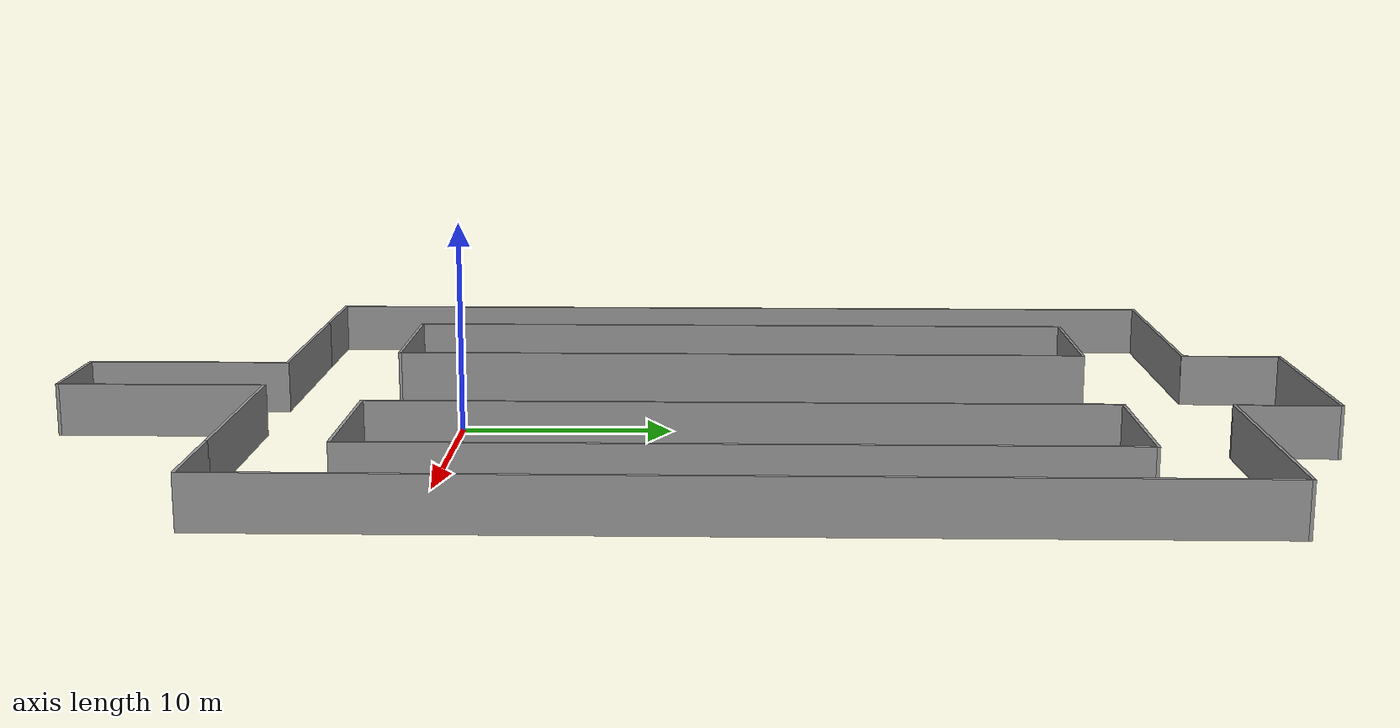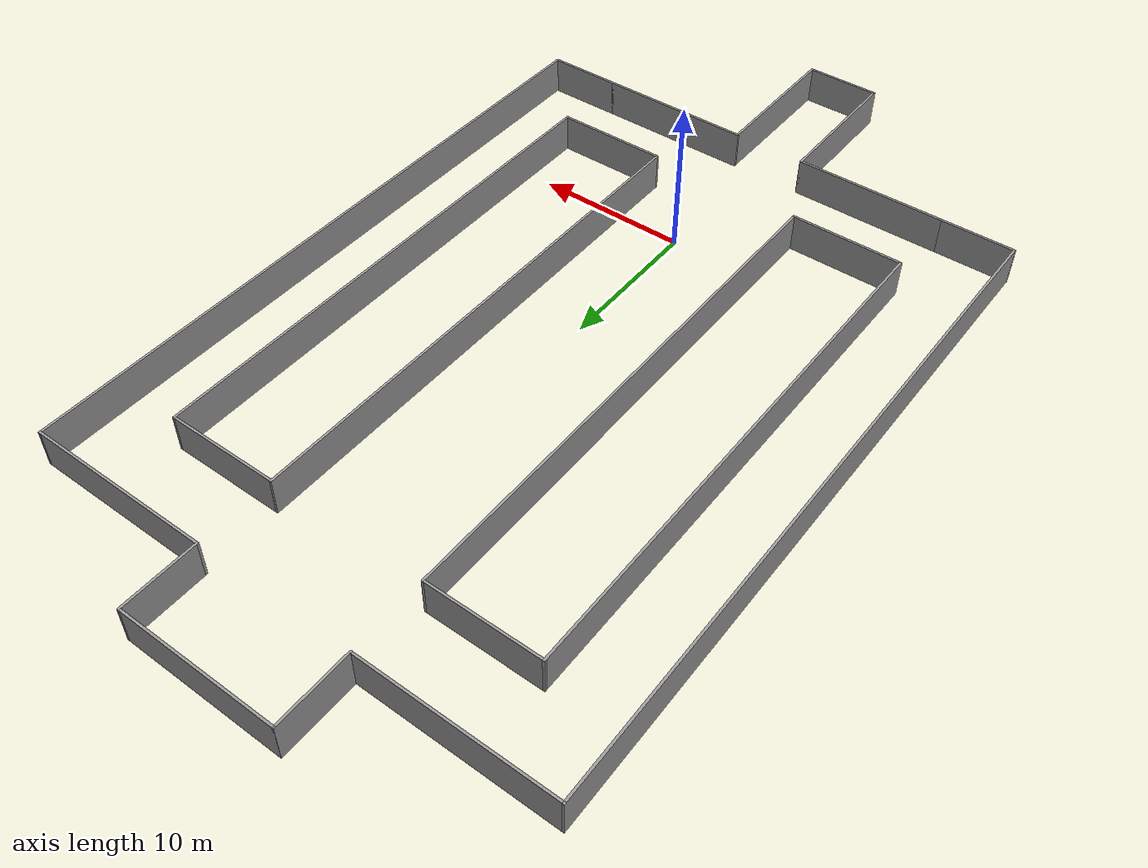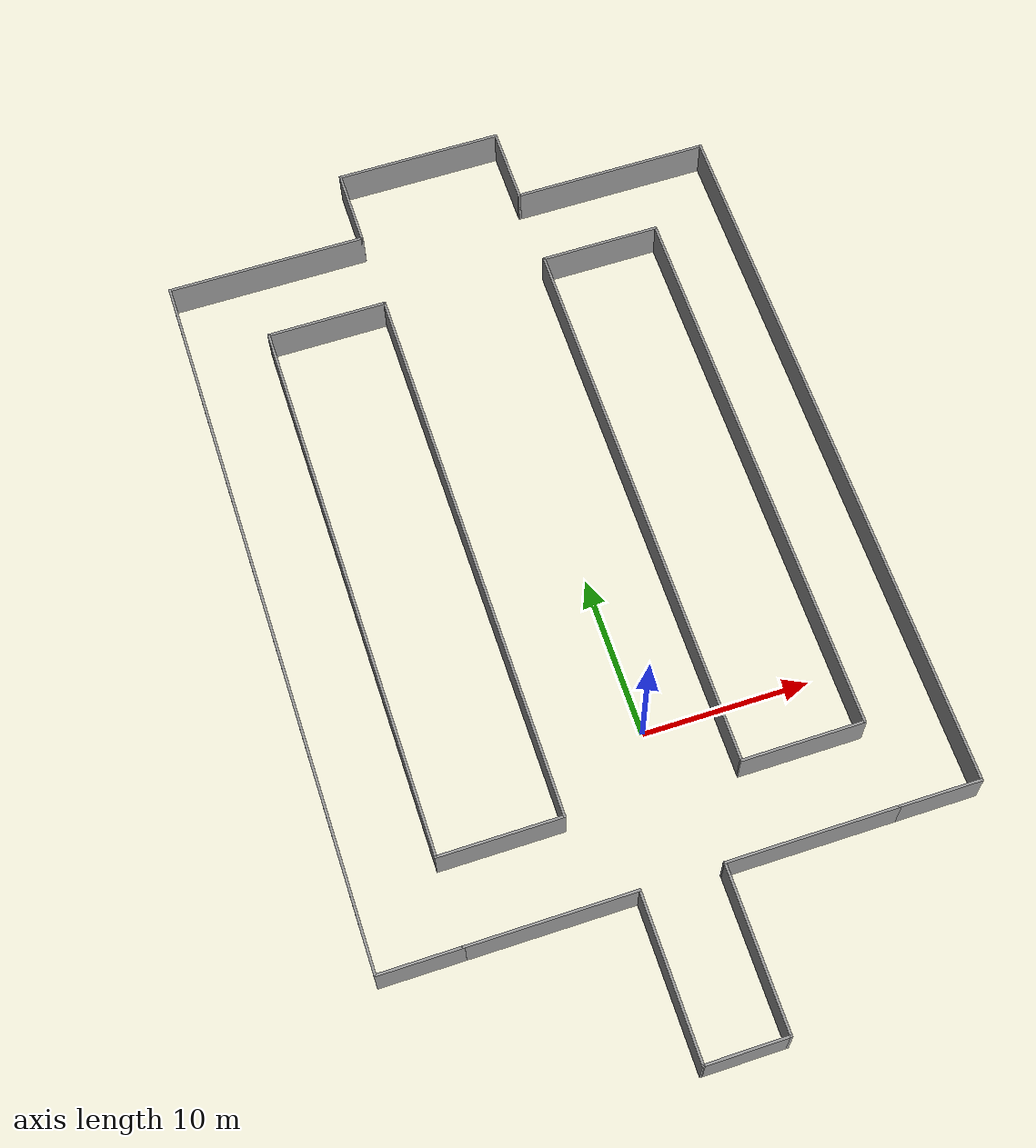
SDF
<?xml version='1.0'?>
<sdf version='1.7'>
  <model name='corridor_sond'>
    <pose>-0.940001 10.721 0 0 -0 0</pose>
    <link name='Wall_0'>
      <collision name='Wall_0_Collision'>
        <geometry>
          <box>
            <size>34.807 0.15 2.5</size>
          </box>
        </geometry>
        <pose>0 0 1.25 0 -0 0</pose>
      </collision>
      <visual name='Wall_0_Visual'>
        <pose>0 0 1.25 0 -0 0</pose>
        <geometry>
          <box>
            <size>34.807 0.15 2.5</size>
          </box>
        </geometry>
        <material>
          <script>
            <uri>file://media/materials/scripts/gazebo.material</uri>
            <name>Gazebo/Grey</name>
          </script>
          <ambient>1 1 1 1</ambient>
        </material>
        <meta>
          <layer>0</layer>
        </meta>
      </visual>
      <pose>-12.365 2.59651 0 0 -0 -1.5708</pose>
    </link>
    <link name='Wall_20'>
      <collision name='Wall_20_Collision'>
        <geometry>
          <box>
            <size>5 0.15 2.5</size>
          </box>
        </geometry>
        <pose>0 0 1.25 0 -0 0</pose>
      </collision>
      <visual name='Wall_20_Visual'>
        <pose>0 0 1.25 0 -0 0</pose>
        <geometry>
          <box>
            <size>5 0.15 2.5</size>
          </box>
        </geometry>
        <material>
          <script>
            <uri>file://media/materials/scripts/gazebo.material</uri>
            <name>Gazebo/Grey</name>
          </script>
          <ambient>1 1 1 1</ambient>
        </material>
        <meta>
          <layer>0</layer>
        </meta>
      </visual>
      <pose>-14.85 -19.925 0 0 -0 3.14159</pose>
    </link>
    <link name='Wall_22'>
      <collision name='Wall_22_Collision'>
        <geometry>
          <box>
            <size>10 0.15 2.5</size>
          </box>
        </geometry>
        <pose>0 0 1.25 0 -0 0</pose>
      </collision>
      <visual name='Wall_22_Visual'>
        <pose>0 0 1.25 0 -0 0</pose>
        <geometry>
          <box>
            <size>10 0.15 2.5</size>
          </box>
        </geometry>
        <material>
          <script>
            <uri>file://media/materials/scripts/gazebo.material</uri>
            <name>Gazebo/Grey</name>
          </script>
          <ambient>1 1 1 1</ambient>
        </material>
        <meta>
          <layer>0</layer>
        </meta>
      </visual>
      <pose>-2.549 -24.85 0 0 -0 -1.5708</pose>
    </link>
    <link name='Wall_24'>
      <collision name='Wall_24_Collision'>
        <geometry>
          <box>
            <size>5 0.15 2.5</size>
          </box>
        </geometry>
        <pose>0 0 1.25 0 -0 0</pose>
      </collision>
      <visual name='Wall_24_Visual'>
        <pose>0 0 1.25 0 -0 0</pose>
        <geometry>
          <box>
            <size>5 0.15 2.5</size>
          </box>
        </geometry>
        <material>
          <script>
            <uri>file://media/materials/scripts/gazebo.material</uri>
            <name>Gazebo/Grey</name>
          </script>
          <ambient>1 1 1 1</ambient>
        </material>
        <meta>
          <layer>0</layer>
        </meta>
      </visual>
      <pose>-0.123999 -29.7745 0 0 -0 0.000206</pose>
    </link>
    <link name='Wall_26'>
      <collision name='Wall_26_Collision'>
        <geometry>
          <box>
            <size>10 0.15 2.5</size>
          </box>
        </geometry>
        <pose>0 0 1.25 0 -0 0</pose>
      </collision>
      <visual name='Wall_26_Visual'>
        <pose>0 0 1.25 0 -0 0</pose>
        <geometry>
          <box>
            <size>10 0.15 2.5</size>
          </box>
        </geometry>
        <material>
          <script>
            <uri>file://media/materials/scripts/gazebo.material</uri>
            <name>Gazebo/Grey</name>
          </script>
          <ambient>1 1 1 1</ambient>
        </material>
        <meta>
          <layer>0</layer>
        </meta>
      </visual>
      <pose>2.301 -24.85 0 0 -0 -1.5708</pose>
    </link>
    <link name='Wall_28'>
      <collision name='Wall_28_Collision'>
        <geometry>
          <box>
            <size>5 0.15 2.5</size>
          </box>
        </geometry>
        <pose>0 0 1.25 0 -0 0</pose>
      </collision>
      <visual name='Wall_28_Visual'>
        <pose>0 0 1.25 0 -0 0</pose>
        <geometry>
          <box>
            <size>5 0.15 2.5</size>
          </box>
        </geometry>
        <material>
          <script>
            <uri>file://media/materials/scripts/gazebo.material</uri>
            <name>Gazebo/Grey</name>
          </script>
          <ambient>1 1 1 1</ambient>
        </material>
        <meta>
          <layer>0</layer>
        </meta>
      </visual>
      <pose>14.85 -19.925 0 0 -0 0</pose>
    </link>
    <link name='Wall_4'>
      <collision name='Wall_4_Collision'>
        <geometry>
          <box>
            <size>34.807 0.15 2.5</size>
          </box>
        </geometry>
        <pose>0 0 1.25 0 -0 0</pose>
      </collision>
      <visual name='Wall_4_Visual'>
        <pose>0 0 1.25 0 -0 0</pose>
        <geometry>
          <box>
            <size>34.807 0.15 2.5</size>
          </box>
        </geometry>
        <material>
          <script>
            <uri>file://media/materials/scripts/gazebo.material</uri>
            <name>Gazebo/Grey</name>
          </script>
          <ambient>1 1 1 1</ambient>
        </material>
        <meta>
          <layer>0</layer>
        </meta>
      </visual>
      <pose>12.485 2.59651 0 0 -0 1.5708</pose>
    </link>
    <link name='Wall_42'>
      <collision name='Wall_42_Collision'>
        <geometry>
          <box>
            <size>10.026 0.15 2.5</size>
          </box>
        </geometry>
        <pose>0 0 1.25 0 -0 0</pose>
      </collision>
      <visual name='Wall_42_Visual'>
        <pose>0 0 1.25 0 -0 0</pose>
        <geometry>
          <box>
            <size>10.026 0.15 2.5</size>
          </box>
        </geometry>
        <material>
          <script>
            <uri>file://media/materials/scripts/gazebo.material</uri>
            <name>Gazebo/Grey</name>
          </script>
          <ambient>1 1 1 1</ambient>
        </material>
        <meta>
          <layer>0</layer>
        </meta>
      </visual>
      <pose>-7.487 -19.925 0 0 -0 0</pose>
    </link>
    <link name='Wall_44'>
      <collision name='Wall_44_Collision'>
        <geometry>
          <box>
            <size>10.274 0.15 2.5</size>
          </box>
        </geometry>
        <pose>0 0 1.25 0 -0 0</pose>
      </collision>
      <visual name='Wall_44_Visual'>
        <pose>0 0 1.25 0 -0 0</pose>
        <geometry>
          <box>
            <size>10.274 0.15 2.5</size>
          </box>
        </geometry>
        <material>
          <script>
            <uri>file://media/materials/scripts/gazebo.material</uri>
            <name>Gazebo/Grey</name>
          </script>
          <ambient>1 1 1 1</ambient>
        </material>
        <meta>
          <layer>0</layer>
        </meta>
      </visual>
      <pose>7.363 -19.925 0 0 -0 0</pose>
    </link>
    <link name='Wall_46'>
      <collision name='Wall_46_Collision'>
        <geometry>
          <box>
            <size>45 0.15 2.5</size>
          </box>
        </geometry>
        <pose>0 0 1.25 0 -0 0</pose>
      </collision>
      <visual name='Wall_46_Visual'>
        <pose>0 0 1.25 0 -0 0</pose>
        <geometry>
          <box>
            <size>45 0.15 2.5</size>
          </box>
        </geometry>
        <material>
          <script>
            <uri>file://media/materials/scripts/gazebo.material</uri>
            <name>Gazebo/Grey</name>
          </script>
          <ambient>1 1 1 1</ambient>
        </material>
        <meta>
          <layer>0</layer>
        </meta>
      </visual>
      <pose>-17.275 2.50001 0 0 -0 1.5708</pose>
    </link>
    <link name='Wall_48'>
      <collision name='Wall_48_Collision'>
        <geometry>
          <box>
            <size>45 0.15 2.5</size>
          </box>
        </geometry>
        <pose>0 0 1.25 0 -0 0</pose>
      </collision>
      <visual name='Wall_48_Visual'>
        <pose>0 0 1.25 0 -0 0</pose>
        <geometry>
          <box>
            <size>45 0.15 2.5</size>
          </box>
        </geometry>
        <material>
          <script>
            <uri>file://media/materials/scripts/gazebo.material</uri>
            <name>Gazebo/Grey</name>
          </script>
          <ambient>1 1 1 1</ambient>
        </material>
        <meta>
          <layer>0</layer>
        </meta>
      </visual>
      <pose>17.275 2.50001 0 0 -0 1.5708</pose>
    </link>
    <link name='Wall_57'>
      <collision name='Wall_57_Collision'>
        <geometry>
          <box>
            <size>34.807 0.15 2.5</size>
          </box>
        </geometry>
        <pose>0 0 1.25 0 -0 0</pose>
      </collision>
      <visual name='Wall_57_Visual'>
        <pose>0 0 1.25 0 -0 0</pose>
        <geometry>
          <box>
            <size>34.807 0.15 2.5</size>
          </box>
        </geometry>
        <material>
          <script>
            <uri>file://media/materials/scripts/gazebo.material</uri>
            <name>Gazebo/Grey</name>
          </script>
          <ambient>1 1 1 1</ambient>
        </material>
        <meta>
          <layer>0</layer>
        </meta>
      </visual>
      <pose>-5.058 2.59651 0 0 -0 -1.5708</pose>
    </link>
    <link name='Wall_59'>
      <collision name='Wall_59_Collision'>
        <geometry>
          <box>
            <size>34.807 0.15 2.5</size>
          </box>
        </geometry>
        <pose>0 0 1.25 0 -0 0</pose>
      </collision>
      <visual name='Wall_59_Visual'>
        <pose>0 0 1.25 0 -0 0</pose>
        <geometry>
          <box>
            <size>34.807 0.15 2.5</size>
          </box>
        </geometry>
        <material>
          <script>
            <uri>file://media/materials/scripts/gazebo.material</uri>
            <name>Gazebo/Grey</name>
          </script>
          <ambient>1 1 1 1</ambient>
        </material>
        <meta>
          <layer>0</layer>
        </meta>
      </visual>
      <pose>5.197 2.59651 0 0 -0 1.5708</pose>
    </link>
    <link name='Wall_68'>
      <collision name='Wall_68_Collision'>
        <geometry>
          <box>
            <size>12.367 0.15 2.5</size>
          </box>
        </geometry>
        <pose>0 0 1.25 0 -0 0</pose>
      </collision>
      <visual name='Wall_68_Visual'>
        <pose>0 0 1.25 0 -0 0</pose>
        <geometry>
          <box>
            <size>12.367 0.15 2.5</size>
          </box>
        </geometry>
        <material>
          <script>
            <uri>file://media/materials/scripts/gazebo.material</uri>
            <name>Gazebo/Grey</name>
          </script>
          <ambient>1 1 1 1</ambient>
        </material>
        <meta>
          <layer>0</layer>
        </meta>
      </visual>
      <pose>-11.1665 24.925 0 0 -0 0</pose>
    </link>
    <link name='Wall_70'>
      <collision name='Wall_70_Collision'>
        <geometry>
          <box>
            <size>12.228 0.15 2.5</size>
          </box>
        </geometry>
        <pose>0 0 1.25 0 -0 0</pose>
      </collision>
      <visual name='Wall_70_Visual'>
        <pose>0 0 1.25 0 -0 0</pose>
        <geometry>
          <box>
            <size>12.228 0.15 2.5</size>
          </box>
        </geometry>
        <material>
          <script>
            <uri>file://media/materials/scripts/gazebo.material</uri>
            <name>Gazebo/Grey</name>
          </script>
          <ambient>1 1 1 1</ambient>
        </material>
        <meta>
          <layer>0</layer>
        </meta>
      </visual>
      <pose>11.236 24.925 0 0 -0 0</pose>
    </link>
    <link name='Wall_72'>
      <collision name='Wall_72_Collision'>
        <geometry>
          <box>
            <size>5 0.15 2.5</size>
          </box>
        </geometry>
        <pose>0 0 1.25 0 -0 0</pose>
      </collision>
      <visual name='Wall_72_Visual'>
        <pose>0 0 1.25 0 -0 0</pose>
        <geometry>
          <box>
            <size>5 0.15 2.5</size>
          </box>
        </geometry>
        <material>
          <script>
            <uri>file://media/materials/scripts/gazebo.material</uri>
            <name>Gazebo/Grey</name>
          </script>
          <ambient>1 1 1 1</ambient>
        </material>
        <meta>
          <layer>0</layer>
        </meta>
      </visual>
      <pose>-5.058 27.35 0 0 -0 1.5708</pose>
    </link>
    <link name='Wall_74'>
      <collision name='Wall_74_Collision'>
        <geometry>
          <box>
            <size>5 0.15 2.5</size>
          </box>
        </geometry>
        <pose>0 0 1.25 0 -0 0</pose>
      </collision>
      <visual name='Wall_74_Visual'>
        <pose>0 0 1.25 0 -0 0</pose>
        <geometry>
          <box>
            <size>5 0.15 2.5</size>
          </box>
        </geometry>
        <material>
          <script>
            <uri>file://media/materials/scripts/gazebo.material</uri>
            <name>Gazebo/Grey</name>
          </script>
          <ambient>1 1 1 1</ambient>
        </material>
        <meta>
          <layer>0</layer>
        </meta>
      </visual>
      <pose>5.197 27.35 0 0 -0 1.5708</pose>
    </link>
    <link name='Wall_76'>
      <collision name='Wall_76_Collision'>
        <geometry>
          <box>
            <size>10.405 0.15 2.5</size>
          </box>
        </geometry>
        <pose>0 0 1.25 0 -0 0</pose>
      </collision>
      <visual name='Wall_76_Visual'>
        <pose>0 0 1.25 0 -0 0</pose>
        <geometry>
          <box>
            <size>10.405 0.15 2.5</size>
          </box>
        </geometry>
        <material>
          <script>
            <uri>file://media/materials/scripts/gazebo.material</uri>
            <name>Gazebo/Grey</name>
          </script>
          <ambient>1 1 1 1</ambient>
        </material>
        <meta>
          <layer>0</layer>
        </meta>
      </visual>
      <pose>0.069501 29.775 0 0 -0 0</pose>
    </link>
    <link name='Wall_78'>
      <collision name='Wall_78_Collision'>
        <geometry>
          <box>
            <size>7.457 0.15 2.5</size>
          </box>
        </geometry>
        <pose>0 0 1.25 0 -0 0</pose>
      </collision>
      <visual name='Wall_78_Visual'>
        <pose>0 0 1.25 0 -0 0</pose>
        <geometry>
          <box>
            <size>7.457 0.15 2.5</size>
          </box>
        </geometry>
        <material>
          <script>
            <uri>file://media/materials/scripts/gazebo.material</uri>
            <name>Gazebo/Grey</name>
          </script>
          <ambient>1 1 1 1</ambient>
        </material>
        <meta>
          <layer>0</layer>
        </meta>
      </visual>
      <pose>-8.7115 -14.732 0 0 -0 0</pose>
    </link>
    <link name='Wall_80'>
      <collision name='Wall_80_Collision'>
        <geometry>
          <box>
            <size>7.457 0.15 2.5</size>
          </box>
        </geometry>
        <pose>0 0 1.25 0 -0 0</pose>
      </collision>
      <visual name='Wall_80_Visual'>
        <pose>0 0 1.25 0 -0 0</pose>
        <geometry>
          <box>
            <size>7.457 0.15 2.5</size>
          </box>
        </geometry>
        <material>
          <script>
            <uri>file://media/materials/scripts/gazebo.material</uri>
            <name>Gazebo/Grey</name>
          </script>
          <ambient>1 1 1 1</ambient>
        </material>
        <meta>
          <layer>0</layer>
        </meta>
      </visual>
      <pose>-8.7115 19.925 0 0 -0 0</pose>
    </link>
    <link name='Wall_82'>
      <collision name='Wall_82_Collision'>
        <geometry>
          <box>
            <size>7.438 0.15 2.5</size>
          </box>
        </geometry>
        <pose>0 0 1.25 0 -0 0</pose>
      </collision>
      <visual name='Wall_82_Visual'>
        <pose>0 0 1.25 0 -0 0</pose>
        <geometry>
          <box>
            <size>7.438 0.15 2.5</size>
          </box>
        </geometry>
        <material>
          <script>
            <uri>file://media/materials/scripts/gazebo.material</uri>
            <name>Gazebo/Grey</name>
          </script>
          <ambient>1 1 1 1</ambient>
        </material>
        <meta>
          <layer>0</layer>
        </meta>
      </visual>
      <pose>8.841 -14.732 0 0 -0 0</pose>
    </link>
    <link name='Wall_84'>
      <collision name='Wall_84_Collision'>
        <geometry>
          <box>
            <size>7.438 0.15 2.5</size>
          </box>
        </geometry>
        <pose>0 0 1.25 0 -0 0</pose>
      </collision>
      <visual name='Wall_84_Visual'>
        <pose>0 0 1.25 0 -0 0</pose>
        <geometry>
          <box>
            <size>7.438 0.15 2.5</size>
          </box>
        </geometry>
        <material>
          <script>
            <uri>file://media/materials/scripts/gazebo.material</uri>
            <name>Gazebo/Grey</name>
          </script>
          <ambient>1 1 1 1</ambient>
        </material>
        <meta>
          <layer>0</layer>
        </meta>
      </visual>
      <pose>8.841 19.925 0 0 -0 0</pose>
    </link>
    <static>1</static>
  </model>
</sdf>
